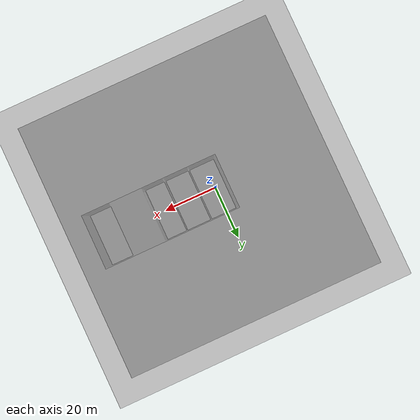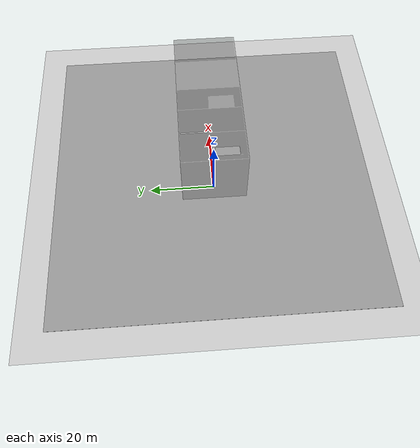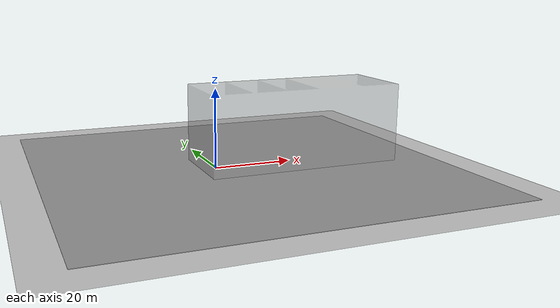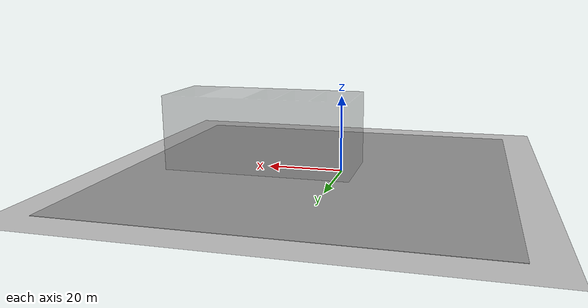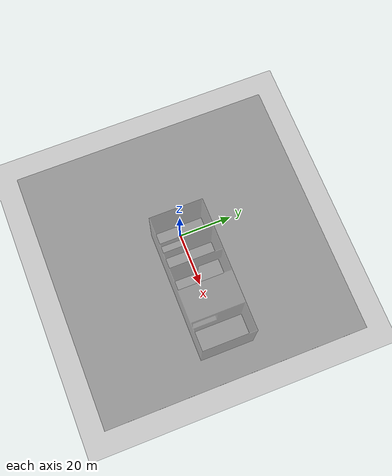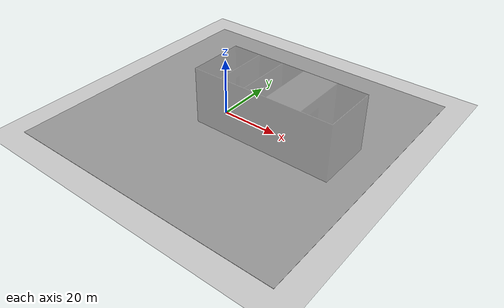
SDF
<sdf version="1.7">
 <world name="default">
  <light name="sun" type="directional">
   <pose>0 0 10 0 -0 0</pose>
   <diffuse>0.8 0.8 0.8 1</diffuse>
   <specular>0.2 0.2 0.2 1</specular>
   <attenuation>
    <range>1000</range>
    <constant>0.9</constant>
    <linear>0.01</linear>
    <quadratic>0.001</quadratic>
   </attenuation>
   <direction>-0.5 0.1 -0.9</direction>
   <spot><inner_angle>0</inner_angle><outer_angle>0</outer_angle><falloff>0</falloff></spot>
  </light>
  <model name="ground_plane">
   <static>1</static>
   <link name="link">
    <collision name="collision">
     <geometry><plane><normal>0 0 1</normal><size>100 100</size></plane></geometry>
     <surface><friction><ode><mu>100</mu><mu2>50</mu2></ode></friction></surface>
    </collision>
    <visual name="visual">
     <cast_shadows>0</cast_shadows>
     <geometry><plane><normal>0 0 1</normal><size>100 100</size></plane></geometry>
     <material>
      <script><uri>file://media/materials/scripts/gazebo.material</uri><name>Gazebo/Grey</name></script>
     </material>
    </visual>
   </link>
  </model>
  <gravity>0 0 -9.8</gravity>
  <magnetic_field>6e-06 2.3e-05 -4.2e-05</magnetic_field>
  <atmosphere type="adiabatic"/>
  <physics type="ode">
   <max_step_size>0.001</max_step_size>
   <real_time_factor>1</real_time_factor>
   <real_time_update_rate>1000</real_time_update_rate>
  </physics>
  <scene><ambient>0.4 0.4 0.4 1</ambient><background>0.7 0.7 0.7 1</background><shadows>1</shadows></scene>
  <spherical_coordinates>
   <surface_model>EARTH_WGS84</surface_model>
   <latitude_deg>0</latitude_deg>
   <longitude_deg>0</longitude_deg>
   <elevation>0</elevation>
   <heading_deg>0</heading_deg>
  </spherical_coordinates>
  <model name="simple_maze">
   <link name="link_0">
    <inertial>
     <mass>1</mass>
     <inertia>
      <ixx>0.166667</ixx>
      <ixy>0</ixy>
      <ixz>0</ixz>
      <iyy>0.166667</iyy>
      <iyz>0</iyz>
      <izz>0.166667</izz>
     </inertia>
    </inertial>
    <pose>7.20971 0 0 0 0 -3.14159</pose>
    <visual name="visual">
     <geometry>
      <mesh>
       <uri>/home/tonitauler/ROS/catkin_ws/src/robots/DJI_matrice_100/m100_simulation/worlds/models/simple_maze.stl</uri>
       <scale>1 1 1</scale>
      </mesh>
     </geometry>
     <material>
      <lighting>1</lighting>
      <script><uri>file://media/materials/scripts/gazebo.material</uri><name>Gazebo/Grey</name></script>
      <shader type="pixel"><normal_map>__default__</normal_map></shader>
      <ambient>0.3 0.3 0.3 1</ambient>
      <diffuse>0.7 0.7 0.7 1</diffuse>
      <specular>0.01 0.01 0.01 1</specular>
      <emissive>0 0 0 1</emissive>
     </material>
     <transparency>0.55</transparency>
    </visual>
    <collision name="collision">
     <geometry>
      <mesh>
       <uri>/home/tonitauler/ROS/drone_ws/src/m100_simulation/worlds/models/simple_maze.stl</uri>
       <scale>1 1 1</scale>
      </mesh>
     </geometry>
     <surface>
      <friction>
       <ode><mu>1</mu><mu2>1</mu2><fdir1>0 0 0</fdir1><slip1>0</slip1><slip2>0</slip2></ode>
       <torsional>
        <coefficient>1</coefficient>
        <patch_radius>0</patch_radius>
        <surface_radius>0</surface_radius>
        <use_patch_radius>1</use_patch_radius>
        <ode><slip>0</slip></ode>
       </torsional>
      </friction>
      <bounce><restitution_coefficient>0</restitution_coefficient><threshold>1e+06</threshold></bounce>
      <contact>
       <collide_without_contact>0</collide_without_contact>
       <collide_without_contact_bitmask>1</collide_without_contact_bitmask>
       <collide_bitmask>1</collide_bitmask>
       <ode>
        <soft_cfm>0</soft_cfm>
        <soft_erp>0.2</soft_erp>
        <kp>1e+13</kp>
        <kd>1</kd>
        <max_vel>0.01</max_vel>
        <min_depth>0</min_depth>
       </ode>
       <bullet>
        <split_impulse>1</split_impulse>
        <split_impulse_penetration_threshold>-0.01</split_impulse_penetration_threshold>
        <soft_cfm>0</soft_cfm>
        <soft_erp>0.2</soft_erp>
        <kp>1e+13</kp>
        <kd>1</kd>
       </bullet>
      </contact>
     </surface>
    </collision>
   </link>
   <model name="ground_plane">
    <static>1</static>
    <link name="link">
     <collision name="collision">
      <geometry><plane><normal>0 0 1</normal><size>100 100</size></plane></geometry>
      <surface><friction><ode><mu>100</mu><mu2>50</mu2></ode></friction></surface>
     </collision>
     <visual name="visual">
      <cast_shadows>0</cast_shadows>
      <geometry><plane><normal>0 0 1</normal><size>100 100</size></plane></geometry>
      <material>
       <script><uri>file://media/materials/scripts/gazebo.material</uri><name>Gazebo/Grey</name></script>
      </material>
     </visual>
    </link>
    <pose>-7.20971 0 0 0 -0 0</pose>
   </model>
   <joint name="link_0_JOINT_0" type="revolute">
    <parent>link_0</parent>
    <child>ground_plane::link</child>
    <axis>
     <xyz>1 0 0</xyz>
     <limit>
      <lower>-1.79769e+308</lower>
      <upper>1.79769e+308</upper>
      <effort>-1</effort>
      <velocity>-1</velocity>
     </limit>
     <dynamics>
      <spring_reference>0</spring_reference>
      <spring_stiffness>0</spring_stiffness>
      <damping>0</damping>
     </dynamics>
    </axis>
    <physics>
     <ode><limit><cfm>0</cfm><erp>0.2</erp></limit><suspension><cfm>0</cfm><erp>0.2</erp></suspension></ode>
    </physics>
   </joint>
   <static>1</static>
   <pose>13.7903 0 0 0 -0 0</pose>
  </model>
 </world>
</sdf>
